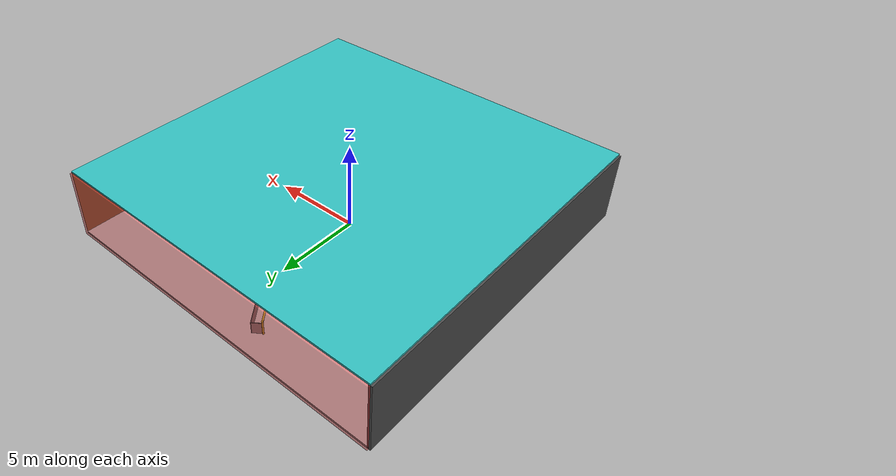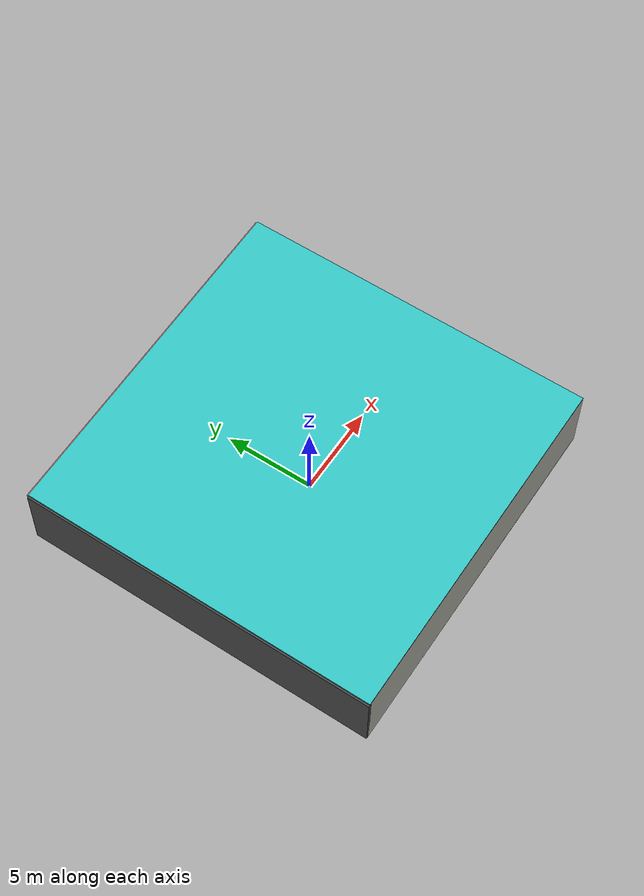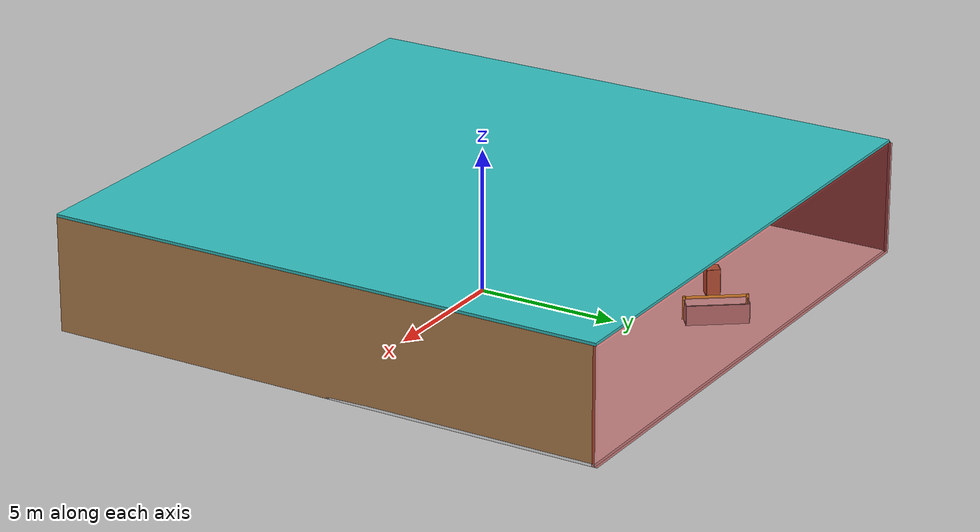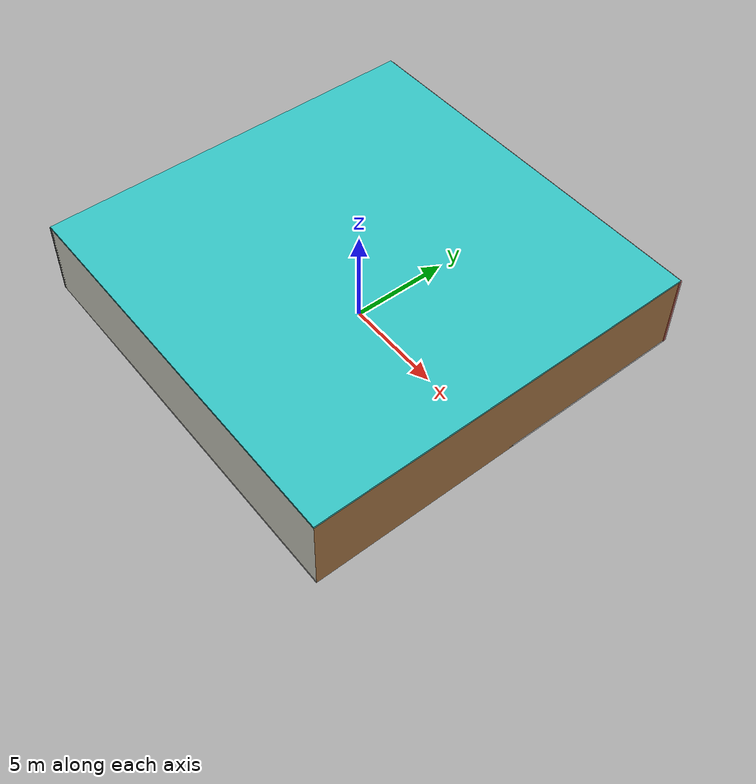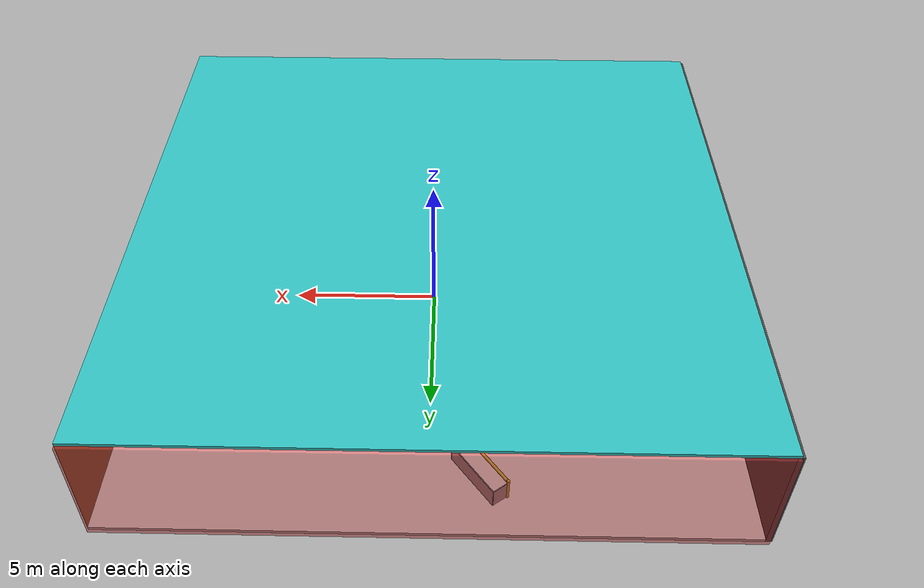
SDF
<sdf version="1.4">
 <world name="default">
  <physics type="ode">
   <max_step_size>0.001</max_step_size>
   <real_time_factor>1</real_time_factor>
   <real_time_update_rate>1000</real_time_update_rate>
   <gravity>0 0 -9.8</gravity>
  </physics>
  <scene><ambient>0.4 0.4 0.4 1</ambient><background>0.7 0.7 0.7 1</background><shadows>1</shadows></scene>
  <model name="Surrounding">
   <static>1</static>
   <link name="Ceiling">
    <collision name="Ceiling_Collision"><geometry><box><size>20 20 0.1</size></box></geometry></collision>
    <visual name="Ceiling_Visual">
     <geometry><box><size>20 20 0.1</size></box></geometry>
     <material>
      <script>
       <uri>file://media/materials/scripts/gazebo.material</uri>
       <name>Gazebo/TurquoiseGlowOutline</name>
      </script>
     </material>
    </visual>
    <pose>0 0 4.05 0 0 0</pose>
   </link>
   <link name="Wall_South">
    <collision name="Wall_South_Collision">
     <geometry><box><size>20 0 4</size></box></geometry>
     <pose>0 0 2 0 -0 0</pose>
    </collision>
    <visual name="Wall_South_Visual">
     <pose>0 0 2 0 -0 0</pose>
     <geometry><box><size>20 0 4</size></box></geometry>
     <material>
      <script><uri>file://media/materials/scripts/gazebo.material</uri><name>Gazebo/PaintedWall</name></script>
     </material>
    </visual>
    <velocity_decay><linear>0</linear><angular>0</angular></velocity_decay>
    <pose>0 -10 0 0 -0 0</pose>
   </link>
   <link name="Wall_East">
    <collision name="Wall_21_Collision">
     <geometry><box><size>20 0 4</size></box></geometry>
     <pose>0 0 2 0 -0 0</pose>
    </collision>
    <visual name="Wall_21_Visual">
     <pose>0 0 2 0 -0 0</pose>
     <geometry><box><size>20 0 4</size></box></geometry>
     <material>
      <script><uri>file://media/materials/scripts/gazebo.material</uri><name>Gazebo/Wood</name></script>
     </material>
    </visual>
    <velocity_decay><linear>0</linear><angular>0</angular></velocity_decay>
    <pose>10 0 0 0 -0 1.5708</pose>
   </link>
   <link name="Wall_North">
    <collision name="Wall_22_Collision">
     <geometry><box><size>20 0.2 4</size></box></geometry>
     <pose>0 0 2 0 -0 0</pose>
    </collision>
    <visual name="Wall_22_Visual">
     <pose>0 0 2 0 -0 0</pose>
     <geometry><box><size>20 0.2 4</size></box></geometry>
     <material>
      <script><uri>file://media/materials/scripts/gazebo.material</uri><name>Gazebo/RedTransparent</name></script>
     </material>
    </visual>
    <velocity_decay><linear>0</linear><angular>0</angular></velocity_decay>
    <pose>0 10 0 0 -0 0</pose>
   </link>
   <link name="Wall_West">
    <collision name="Wall_23_Collision">
     <geometry><box><size>20 0.2 4</size></box></geometry>
     <pose>0 0 2 0 -0 0</pose>
    </collision>
    <visual name="Wall_23_Visual">
     <pose>0 0 2 0 -0 0</pose>
     <geometry><box><size>20 0.2 4</size></box></geometry>
     <material>
      <script><uri>file://media/materials/scripts/gazebo.material</uri><name>Gazebo/Road</name></script>
     </material>
    </visual>
    <velocity_decay><linear>0</linear><angular>0</angular></velocity_decay>
    <pose>-10 0 0 0 0 -1.5708</pose>
   </link>
   <link name="Ground_link">
    <collision name="collision">
     <pose>0 0 .05 0 -0 0</pose>
     <geometry><box><size>20 20 0.1</size></box></geometry>
    </collision>
    <visual name="visual">
     <pose>0 0 .05 0 -0 0</pose>
     <geometry><box><size>20 20 0.1</size></box></geometry>
     <material>
      <script><uri>file://media/materials/scripts/gazebo.material</uri><name>Gazebo/WhiteGlow</name></script>
     </material>
    </visual>
   </link>
   <static>1</static>
  </model>
  <spherical_coordinates>
   <surface_model>EARTH_WGS84</surface_model>
   <latitude_deg>0</latitude_deg>
   <longitude_deg>0</longitude_deg>
   <elevation>0</elevation>
   <heading_deg>0</heading_deg>
  </spherical_coordinates>
  <light name="lightball_0" type="diffuse">
   <diffuse>0.8 0.8 0.8 1</diffuse>
   <specular>0.2 0.2 0.2 1</specular>
   <attenuation>
    <range>100</range>
    <constant>0.7</constant>
    <linear>0.01</linear>
    <quadratic>0.001</quadratic>
   </attenuation>
   <direction>-0.5 0.1 -0.9</direction>
   <pose>-7.55581497093 -0.932158706221 3.75387766279 0 0 0</pose>
  </light>
  <light name="lightball_1" type="diffuse">
   <diffuse>0.8 0.8 0.8 1</diffuse>
   <specular>0.2 0.2 0.2 1</specular>
   <attenuation>
    <range>100</range>
    <constant>0.7</constant>
    <linear>0.01</linear>
    <quadratic>0.001</quadratic>
   </attenuation>
   <direction>-0.5 0.1 -0.9</direction>
   <pose>2.87785501936 4.50067906535 1.80485171004 0 0 0</pose>
  </light>
  <light name="lightball_2" type="diffuse">
   <diffuse>0.8 0.8 0.8 1</diffuse>
   <specular>0.2 0.2 0.2 1</specular>
   <attenuation>
    <range>100</range>
    <constant>0.7</constant>
    <linear>0.01</linear>
    <quadratic>0.001</quadratic>
   </attenuation>
   <direction>-0.5 0.1 -0.9</direction>
   <pose>6.5422364835 2.50172483758 0.959458332418 0 0 0</pose>
  </light>
  <light name="lightball_3" type="diffuse">
   <diffuse>0.8 0.8 0.8 1</diffuse>
   <specular>0.2 0.2 0.2 1</specular>
   <attenuation>
    <range>100</range>
    <constant>0.7</constant>
    <linear>0.01</linear>
    <quadratic>0.001</quadratic>
   </attenuation>
   <direction>-0.5 0.1 -0.9</direction>
   <pose>-7.45481320797 3.10455025857 2.63998633022 0 0 0</pose>
  </light>
  <light name="lightball_4" type="diffuse">
   <diffuse>0.8 0.8 0.8 1</diffuse>
   <specular>0.2 0.2 0.2 1</specular>
   <attenuation>
    <range>100</range>
    <constant>0.7</constant>
    <linear>0.01</linear>
    <quadratic>0.001</quadratic>
   </attenuation>
   <direction>-0.5 0.1 -0.9</direction>
   <pose>5.30809841384 -5.21817819928 0.753078585693 0 0 0</pose>
  </light>
  <light name="lightball_5" type="diffuse">
   <diffuse>0.8 0.8 0.8 1</diffuse>
   <specular>0.2 0.2 0.2 1</specular>
   <attenuation>
    <range>100</range>
    <constant>0.7</constant>
    <linear>0.01</linear>
    <quadratic>0.001</quadratic>
   </attenuation>
   <direction>-0.5 0.1 -0.9</direction>
   <pose>8.46354959774 -1.27745077899 1.01241162359 0 0 0</pose>
  </light>
  <light name="lightball_6" type="diffuse">
   <diffuse>0.8 0.8 0.8 1</diffuse>
   <specular>0.2 0.2 0.2 1</specular>
   <attenuation>
    <range>100</range>
    <constant>0.7</constant>
    <linear>0.01</linear>
    <quadratic>0.001</quadratic>
   </attenuation>
   <direction>-0.5 0.1 -0.9</direction>
   <pose>1.18326674293 4.47099857874 2.38656906293 0 0 0</pose>
  </light>
  <light name="lightball_7" type="diffuse">
   <diffuse>0.8 0.8 0.8 1</diffuse>
   <specular>0.2 0.2 0.2 1</specular>
   <attenuation>
    <range>100</range>
    <constant>0.7</constant>
    <linear>0.01</linear>
    <quadratic>0.001</quadratic>
   </attenuation>
   <direction>-0.5 0.1 -0.9</direction>
   <pose>-7.39525275661 8.8297084031 0.830328167561 0 0 0</pose>
  </light>
  <light name="lightball_8" type="diffuse">
   <diffuse>0.8 0.8 0.8 1</diffuse>
   <specular>0.2 0.2 0.2 1</specular>
   <attenuation>
    <range>100</range>
    <constant>0.7</constant>
    <linear>0.01</linear>
    <quadratic>0.001</quadratic>
   </attenuation>
   <direction>-0.5 0.1 -0.9</direction>
   <pose>-7.3345640286 -6.09906249674 3.54843015174 0 0 0</pose>
  </light>
  <light name="lightball_9" type="diffuse">
   <diffuse>0.8 0.8 0.8 1</diffuse>
   <specular>0.2 0.2 0.2 1</specular>
   <attenuation>
    <range>100</range>
    <constant>0.7</constant>
    <linear>0.01</linear>
    <quadratic>0.001</quadratic>
   </attenuation>
   <direction>-0.5 0.1 -0.9</direction>
   <pose>-1.3600400359 -5.37072682749 1.84414396866 0 0 0</pose>
  </light>
  <include>
   <uri>model://construction_cone</uri>
   <pose>-7.50543643045 -1.41958293508 0 0 0 0.212577970068</pose>
  </include>
  <include><uri>model://cabinet</uri><pose>-3.5626950522 6.74257246417 0 0 0 0.703671196667</pose></include>
  <include>
   <uri>model://robocup_3Dsim_goal</uri>
   <pose>-1.77875147429 7.82606342394 0 0 0 0.636671499908</pose>
  </include>
  <include>
   <uri>model://robocup_3Dsim_goal</uri>
   <pose>0.710083202172 -0.944367780503 0 0 0 0.370188989214</pose>
  </include>
  <include><uri>model://table</uri><pose>2.45524192433 1.57308830796 0 0 0 0.194378237496</pose></include>
  <include>
   <uri>model://construction_cone</uri>
   <pose>2.16095923683 4.99261159719 0 0 0 2.61269321317</pose>
  </include>
  <include><uri>model://cabinet</uri><pose>5.0267739072 -1.23711981061 0 0 0 0.117740292387</pose></include>
  <include>
   <uri>model://construction_cone</uri>
   <pose>8.1141393651 -2.59739598606 0 0 0 0.360340877912</pose>
  </include>
 </world>
</sdf>

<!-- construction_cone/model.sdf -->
<sdf version="1.5">
  <model name="Construction Cone">
    <link name="link">
      <collision name="collision">
        <geometry>
          <mesh>
            <scale>10 10 10</scale>
            <uri>file://isr-testbed/construction_cone/meshes/construction_cone.dae</uri>
          </mesh>
        </geometry>
      </collision>
      <visual name="visual">
        <geometry>
          <mesh>
            <scale>10 10 10</scale>
            <uri>file://isr-testbed/construction_cone/meshes/construction_cone.dae</uri>
          </mesh>
        </geometry>
      </visual>
    </link>
  </model>
</sdf>

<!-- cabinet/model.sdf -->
<sdf version="1.5">
  <model name="cabinet">
    <static>true</static>
    <link name="cabinet_bottom_plate">
      <inertial>
        <pose>0 0 -1 0 0 0</pose>
        <inertia>
          <ixx>2.050000</ixx>
          <ixy>0</ixy>
          <ixz>0</ixz>
          <iyy>2.050000</iyy>
          <iyz>0</iyz>
          <izz>2.050000</izz>
        </inertia>
        <mass>25.000000</mass>
      </inertial>
      <collision name="cabinet_bottom_plate_geom">
        <pose>0 0 0.010000 0 0 0</pose>
        <geometry>
          <box>
            <size>0.450000 0.450000 0.020000</size>
          </box>
        </geometry>
      </collision>
      <visual name="cabinet_bottom_plate_geom_visual">
        <pose>0 0 0.010000 0 0 0</pose>
        <geometry>
          <box>
            <size>0.450000 0.450000 0.020000</size>
          </box>
        </geometry>
        <material>
          <script>
            <uri>model://media/materials/scripts/gazebo.material</uri>
            <name>Gazebo/Wood</name>
          </script>
        </material>
      </visual>
      <collision name="cabinet_bottom_plate_geom_cabinet_back_plate">
        <pose>0.235000 0 0.510000 0 0 0</pose>
        <geometry>
          <box>
            <size>0.020000 0.450000 1.020000</size>
          </box>
        </geometry>
      </collision>
      <visual name="cabinet_bottom_plate_geom_cabinet_back_plate_visual">
        <pose>0.235000 0 0.510000 0 0 0</pose>
        <geometry>
          <box>
            <size>0.020000 0.450000 1.020000</size>
          </box>
        </geometry>
        <material>
          <script>
            <uri>model://media/materials/scripts/gazebo.material</uri>
            <name>Gazebo/Wood</name>
          </script>
        </material>
      </visual>
      <collision name="cabinet_bottom_plate_geom_cabinet_left_plate">
        <pose>0 0.235000 0.510000 0 0 0</pose>
        <geometry>
          <box>
            <size>0.450000 0.020000 1.020000</size>
          </box>
        </geometry>
      </collision>
      <visual name="cabinet_bottom_plate_geom_cabinet_left_plate_visual">
        <pose>0 0.235000 0.510000 0 0 0</pose>
        <geometry>
          <box>
            <size>0.450000 0.020000 1.020000</size>
          </box>
        </geometry>
        <material>
          <script>
            <uri>model://media/materials/scripts/gazebo.material</uri>
            <name>Gazebo/Wood</name>
          </script>
        </material>
      </visual>
      <collision name="cabinet_bottom_plate_geom_cabinet_middle_plate">
        <pose>0 0 0.510000 0 0 0</pose>
        <geometry>
          <box>
            <size>0.450000 0.450000 0.020000</size>
          </box>
        </geometry>
      </collision>
      <visual name="cabinet_bottom_plate_geom_cabinet_middle_plate_visual">
        <pose>0 0 0.510000 0 0 0</pose>
        <geometry>
          <box>
            <size>0.450000 0.450000 0.020000</size>
          </box>
        </geometry>
        <material>
          <script>
            <uri>model://media/materials/scripts/gazebo.material</uri>
            <name>Gazebo/Wood</name>
          </script>
        </material>
      </visual>
      <collision name="cabinet_bottom_plate_geom_cabinet_right_plate">
        <pose>0 -0.235000 0.510000 0 0 0</pose>
        <geometry>
          <box>
            <size>0.450000 0.020000 1.020000</size>
          </box>
        </geometry>
      </collision>
      <visual name="cabinet_bottom_plate_geom_cabinet_right_plate_visual">
        <pose>0 -0.235000 0.510000 0 0 0</pose>
        <geometry>
          <box>
            <size>0.450000 0.020000 1.020000</size>
          </box>
        </geometry>
        <material>
          <script>
            <uri>model://media/materials/scripts/gazebo.material</uri>
            <name>Gazebo/Wood</name>
          </script>
        </material>
      </visual>
      <collision name="cabinet_bottom_plate_geom_cabinet_top_plate">
        <pose>0 0 1.010000 0 0 0</pose>
        <geometry>
          <box>
            <size>0.450000 0.450000 0.020000</size>
          </box>
        </geometry>
      </collision>
      <visual name="cabinet_bottom_plate_geom_cabinet_top_plate_visual">
        <pose>0 0 1.010000 0 0 0</pose>
        <geometry>
          <box>
            <size>0.450000 0.450000 0.020000</size>
          </box>
        </geometry>
        <material>
          <script>
            <uri>model://media/materials/scripts/gazebo.material</uri>
            <name>Gazebo/Wood</name>
          </script>
        </material>
      </visual>
    </link>
  </model>
</sdf>

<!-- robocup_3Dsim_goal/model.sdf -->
<sdf version="1.5">
  <model name="robocup_3d_goal">
    <static>true</static>
    <link name="left_post">
      <pose>0 1.05 0.45 0 0 0</pose>
      <collision name="collision">
        <geometry>
          <cylinder>
            <radius>0.05</radius>
            <length>0.9</length>
          </cylinder>
        </geometry>
      </collision>
      <visual name="visual">
        <geometry>
          <cylinder>
            <radius>0.05</radius>
            <length>0.9</length>
          </cylinder>
        </geometry>
        <material>
          <script>
            <uri>file://media/materials/scripts/gazebo.material</uri>
            <name>Gazebo/ZincYellow</name>
          </script>
        </material>
      </visual>
    </link>
    <link name="left_support_horiz_lower">
      <pose>0.30 1.05 0.01 0 0 0</pose>
      <collision name="collision">
        <geometry>
          <box>
            <size>0.50 0.02 0.02</size>
          </box>
        </geometry>
      </collision>
      <visual name="visual">
        <geometry>
          <box>
            <size>0.50 0.02 0.02</size>
          </box>
        </geometry>
        <material>
          <script>
            <uri>file://media/materials/scripts/gazebo.material</uri>
            <name>Gazebo/White</name>
          </script>
        </material>
      </visual>
    </link>
    <link name="left_support_horiz_upper">
      <pose>0.30 1.05 0.79 0 0 0</pose>
      <collision name="collision">
        <geometry>
          <box>
            <size>0.50 0.02 0.02</size>
          </box>
        </geometry>
      </collision>
      <visual name="visual">
        <geometry>
          <box>
            <size>0.50 0.02 0.02</size>
          </box>
        </geometry>
        <material>
          <script>
            <uri>file://media/materials/scripts/gazebo.material</uri>
            <name>Gazebo/White</name>
          </script>
        </material>
      </visual>
    </link>
    <link name="left_support_vertical">
      <pose>0.56 1.05 0.4 0 1.5708 0</pose>
      <collision name="collision">
        <geometry>
          <box>
            <size>0.80 0.02 0.02</size>
          </box>
        </geometry>
      </collision>
      <visual name="visual">
        <geometry>
          <box>
            <size>0.80 0.02 0.02</size>
          </box>
        </geometry>
        <material>
          <script>
            <uri>file://media/materials/scripts/gazebo.material</uri>
            <name>Gazebo/White</name>
          </script>
        </material>
      </visual>
    </link>
    <link name="right_support_horiz_lower">
      <pose>0.30 -1.05 0.01 0 0 0</pose>
      <collision name="collision">
        <geometry>
          <box>
            <size>0.50 0.02 0.02</size>
          </box>
        </geometry>
      </collision>
      <visual name="visual">
        <geometry>
          <box>
            <size>0.50 0.02 0.02</size>
          </box>
        </geometry>
        <material>
          <script>
            <uri>file://media/materials/scripts/gazebo.material</uri>
            <name>Gazebo/White</name>
          </script>
        </material>
      </visual>
    </link>
    <link name="right_support_horiz_upper">
      <pose>0.30 -1.05 0.79 0 0 0</pose>
      <collision name="collision">
        <geometry>
          <box>
            <size>0.50 0.02 0.02</size>
          </box>
        </geometry>
      </collision>
      <visual name="visual">
        <geometry>
          <box>
            <size>0.50 0.02 0.02</size>
          </box>
        </geometry>
        <material>
          <script>
            <uri>file://media/materials/scripts/gazebo.material</uri>
            <name>Gazebo/White</name>
          </script>
        </material>
      </visual>
    </link>
    <link name="right_support_vertical">
      <pose>0.56 -1.05 0.4 0 1.5708 0</pose>
      <collision name="collision">
        <geometry>
          <box>
            <size>0.80 0.02 0.02</size>
          </box>
        </geometry>
      </collision>
      <visual name="visual">
        <geometry>
          <box>
            <size>0.80 0.02 0.02</size>
          </box>
        </geometry>
        <material>
          <script>
            <uri>file://media/materials/scripts/gazebo.material</uri>
            <name>Gazebo/White</name>
          </script>
        </material>
      </visual>
    </link>
    <link name="center_support_horiz_lower">
      <pose>0.56 0 0.01 0 1.5708 0</pose>
      <collision name="collision">
        <geometry>
          <box>
            <size>0.02 2.08 0.02</size>
          </box>
        </geometry>
      </collision>
      <visual name="visual">
        <geometry>
          <box>
            <size>0.02 2.08 0.02</size>
          </box>
        </geometry>
        <material>
          <script>
            <uri>file://media/materials/scripts/gazebo.material</uri>
            <name>Gazebo/White</name>
          </script>
        </material>
      </visual>
    </link>
    <link name="center_support_horiz_upper">
      <pose>0.56 0 0.79 0 1.5708 0</pose>
      <collision name="collision">
        <geometry>
          <box>
            <size>0.02 2.08 0.02</size>
          </box>
        </geometry>
      </collision>
      <visual name="visual">
        <geometry>
          <box>
            <size>0.02 2.08 0.02</size>
          </box>
        </geometry>
        <material>
          <script>
            <uri>file://media/materials/scripts/gazebo.material</uri>
            <name>Gazebo/White</name>
          </script>
        </material>
      </visual>
    </link>
    <link name="right_post">
      <pose>0 -1.05 0.45 0 0 0</pose>
      <collision name="collision">
        <geometry>
          <cylinder>
            <radius>0.05</radius>
            <length>0.9</length>
          </cylinder>
        </geometry>
      </collision>
      <visual name="visual">
        <geometry>
          <cylinder>
            <radius>0.05</radius>
            <length>0.9</length>
          </cylinder>
        </geometry>
        <material>
          <script>
            <uri>file://media/materials/scripts/gazebo.material</uri>
            <name>Gazebo/ZincYellow</name>
          </script>
        </material>
      </visual>
    </link>
    <link name="crossbar">
      <pose>0 0 0.85 1.57 1.57 0</pose>
      <collision name="collision">
        <geometry>
          <cylinder>
            <radius>0.05</radius>
            <length>2.0</length>
          </cylinder>
        </geometry>
      </collision>
      <visual name="visual">
        <geometry>
          <cylinder>
            <radius>0.05</radius>
            <length>2.0</length>
          </cylinder>
        </geometry>
        <material>
          <script>
            <uri>file://media/materials/scripts/gazebo.material</uri>
            <name>Gazebo/ZincYellow</name>
          </script>
        </material>
      </visual>
    </link>
    <link name="center_net">
      <pose>0.56 0 0.40 0 0 0</pose>
      <collision name="collision">
        <geometry>
          <box>
            <size>0.01 2.1 0.80</size>
          </box>
        </geometry>
      </collision>
      <visual name="visual">
        <geometry>
          <box>
            <size>0.01 2.1 0.80</size>
          </box>
        </geometry>
        <material>
          <script>
            <uri>model://../model_source/models/robocup09_spl_field/materials/scripts/</uri>
            <uri>model://../model_source/models/robocup09_spl_field/materials/textures/</uri>
            <name>RoboCup/Net</name>
          </script>
        </material>
      </visual>
    </link>
    <link name="left_net">
      <pose>0.30 1.05 0.40 0 0 0</pose>
      <collision name="collision">
        <geometry>
          <box>
            <size>0.50 0.01 0.76</size>
          </box>
        </geometry>
      </collision>
      <visual name="visual">
        <geometry>
          <box>
            <size>0.50 0.01 0.76</size>
          </box>
        </geometry>
        <material>
          <script>
            <uri>model://../model_source/models/robocup09_spl_field/materials/scripts/</uri>
            <uri>model://../model_source/models/robocup09_spl_field/materials/textures/</uri>
            <name>RoboCup/Net</name>
          </script>
        </material>
      </visual>
    </link>
    <link name="right_net">
      <pose>0.30 -1.05 0.40 0 0 0</pose>
      <collision name="collision">
        <geometry>
          <box>
            <size>0.50 0.01 0.76</size>
          </box>
        </geometry>
      </collision>
      <visual name="visual">
        <geometry>
          <box>
            <size>0.50 0.01 0.76</size>
          </box>
        </geometry>
        <material>
          <script>
            <uri>model://../model_source/models/robocup09_spl_field/materials/scripts/</uri>
            <uri>model://../model_source/models/robocup09_spl_field/materials/textures/</uri>
            <name>RoboCup/Net</name>
          </script>
        </material>
      </visual>
    </link>
  </model>
</sdf>

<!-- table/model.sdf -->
<sdf version="1.5">
  <model name="table">
    <static>true</static>
    <link name="link">
      <collision name="surface">
        <pose>0 0 1.0 0 0 0</pose>
        <geometry>
          <box>
            <size>1.5 0.8 0.03</size>
          </box>
        </geometry>
        <surface>
          <friction>
            <ode>
              <mu>0.6</mu>
              <mu2>0.6</mu2>
            </ode>
          </friction>
        </surface>
      </collision>
      <visual name="visual1">
        <pose>0 0 1.0 0 0 0</pose>
        <geometry>
          <box>
            <size>1.5 0.8 0.03</size>
          </box>
        </geometry>
        <material>
          <script>
            <uri>model://media/materials/scripts/gazebo.material</uri>
            <name>Gazebo/Wood</name>
          </script>
        </material>
      </visual>
      <collision name="front_left_leg">
        <pose>0.68 0.38 0.5 0 0 0</pose>
        <geometry>
          <cylinder>
            <radius>0.02</radius>
            <length>1.0</length>
          </cylinder>
        </geometry>
      </collision>
      <visual name="front_left_leg">
        <pose>0.68 0.38 0.5 0 0 0</pose>
        <geometry>
          <cylinder>
            <radius>0.02</radius>
            <length>1.0</length>
          </cylinder>
        </geometry>
        <material>
          <script>
            <uri>model://media/materials/scripts/gazebo.material</uri>
            <name>Gazebo/Grey</name>
          </script>
        </material>
      </visual>
      <collision name="front_right_leg">
        <pose>0.68 -0.38 0.5 0 0 0</pose>
        <geometry>
          <cylinder>
            <radius>0.02</radius>
            <length>1.0</length>
          </cylinder>
        </geometry>
      </collision>
      <visual name="front_right_leg">
        <pose>0.68 -0.38 0.5 0 0 0</pose>
        <geometry>
          <cylinder>
            <radius>0.02</radius>
            <length>1.0</length>
          </cylinder>
        </geometry>
        <material>
          <script>
            <uri>model://media/materials/scripts/gazebo.material</uri>
            <name>Gazebo/Grey</name>
          </script>
        </material>
      </visual>
      <collision name="back_right_leg">
        <pose>-0.68 -0.38 0.5 0 0 0</pose>
        <geometry>
          <cylinder>
            <radius>0.02</radius>
            <length>1.0</length>
          </cylinder>
        </geometry>
      </collision>
      <visual name="back_right_leg">
        <pose>-0.68 -0.38 0.5 0 0 0</pose>
        <geometry>
          <cylinder>
            <radius>0.02</radius>
            <length>1.0</length>
          </cylinder>
        </geometry>
        <material>
          <script>
            <uri>model://media/materials/scripts/gazebo.material</uri>
            <name>Gazebo/Grey</name>
          </script>
        </material>
      </visual>
      <collision name="back_left_leg">
        <pose>-0.68 0.38 0.5 0 0 0</pose>
        <geometry>
          <cylinder>
            <radius>0.02</radius>
            <length>1.0</length>
          </cylinder>
        </geometry>
      </collision>
      <visual name="back_left_leg">
        <pose>-0.68 0.38 0.5 0 0 0</pose>
        <geometry>
          <cylinder>
            <radius>0.02</radius>
            <length>1.0</length>
          </cylinder>
        </geometry>
        <material>
          <script>
            <uri>model://media/materials/scripts/gazebo.material</uri>
            <name>Gazebo/Grey</name>
          </script>
        </material>
      </visual>
    </link>
  </model>
</sdf>
